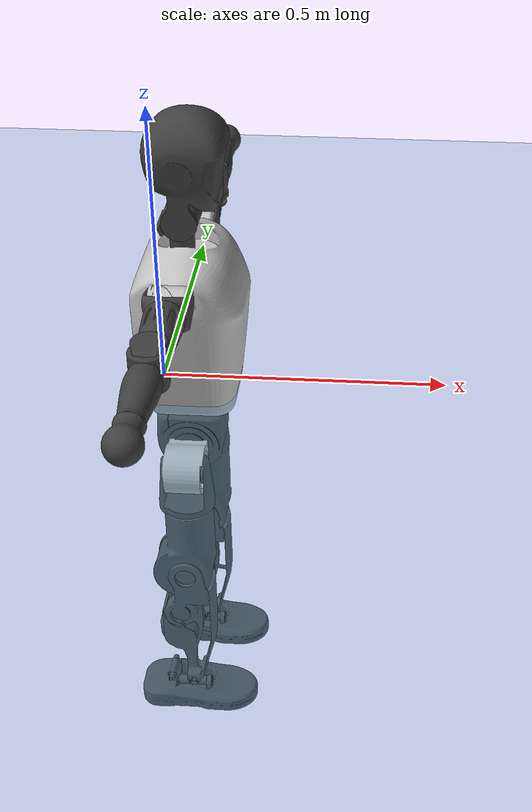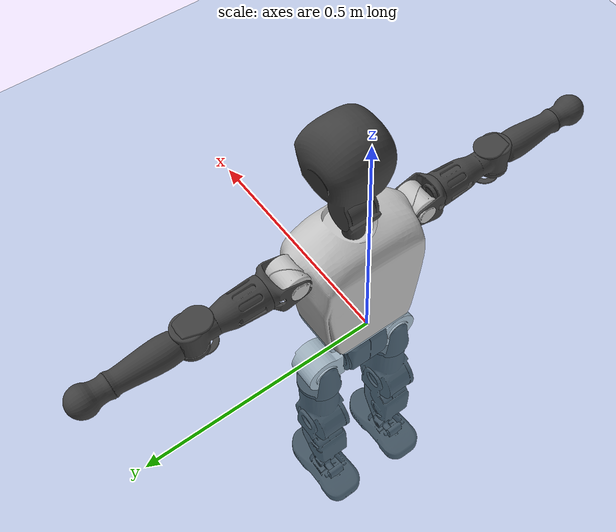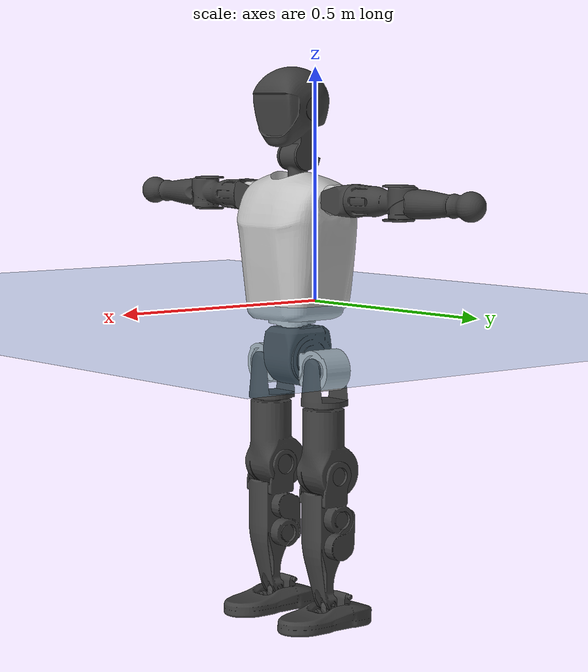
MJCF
<mujoco model="T1">
  <compiler angle="radian" assetdir="assets" balanceinertia="true" inertiafromgeom="false"/>

  <option timestep="0.005" density="1.2" viscosity="2e-05"/>

  <size nkey="1"/>

  <visual>
    <quality shadowsize="8192"/>
    <map shadowclip="0.5"/>
  </visual>

  <default>
    <default class="/">
      <joint armature="0.01" damping="0.01" frictionloss="0.1"/>
      <geom contype="0" conaffinity="0" group="1" solref="-1000 -80"/>
      <site size="0.01 0.005 0.005" group="5"/>
      <general forcelimited="true" biastype="affine" gainprm="25" biasprm="0 -25 -0.6"/>
      <default class="t1">
        <geom rgba="0.25 0.25 0.25 1"/>
        <default class="visual">
          <geom type="mesh" group="2"/>
        </default>
        <default class="collision">
          <geom group="3"/>
        </default>
        <default class="foot">
          <geom size="0.1115 0.05 0.015" type="box" condim="6" group="4" priority="1" solimp="0.015 1 0.015"/>
        </default>
        <default class="reward_collision_sphere">
          <geom group="5" rgba="1 0 0 1"/>
        </default>
      </default>
    </default>
  </default>

  <asset>
    <texture type="skybox" colorspace="auto" name="//unnamed_texture_0" builtin="gradient" rgb1="0.95 0.95 0.95" rgb2="0.95 0.95 0.95" width="100" height="600"/>
    <texture type="2d" colorspace="auto" name="texplane" builtin="checker" rgb1="0.345 0.575 0.748" rgb2="0.345 0.575 0.748" markrgb="1 1 1" width="512" height="512"/>
    <material name="MatPlane" class="/" texture="texplane" texuniform="true" texrepeat="2 2" specular="0.9"/>
    <mesh name="Trunk" class="/" file="Trunk.stl"/>
    <mesh name="H1" class="/" file="H1.stl"/>
    <mesh name="H2" class="/" file="H2.stl"/>
    <mesh name="AL1" class="/" file="AL1.stl"/>
    <mesh name="AL2" class="/" file="AL2.stl"/>
    <mesh name="AL3" class="/" file="AL3.stl"/>
    <mesh name="left_hand_link" class="/" file="left_hand_link.stl"/>
    <mesh name="AR1" class="/" file="AR1.stl"/>
    <mesh name="AR2" class="/" file="AR2.stl"/>
    <mesh name="AR3" class="/" file="AR3.stl"/>
    <mesh name="right_hand_link" class="/" file="right_hand_link.stl"/>
    <mesh name="Waist" class="/" file="Waist.stl"/>
    <mesh name="Hip_Pitch_Left" class="/" file="Hip_Pitch_Left.stl"/>
    <mesh name="Hip_Roll_Left" class="/" file="Hip_Roll_Left.stl"/>
    <mesh name="Hip_Yaw_Left" class="/" file="Hip_Yaw_Left.stl"/>
    <mesh name="Shank_Left" class="/" file="Shank_Left.stl"/>
    <mesh name="Ankle_Cross_Left" class="/" file="Ankle_Cross_Left.stl"/>
    <mesh name="left_foot_link" class="/" file="left_foot_link.stl"/>
    <mesh name="Hip_Pitch_Right" class="/" file="Hip_Pitch_Right.stl"/>
    <mesh name="Hip_Roll_Right" class="/" file="Hip_Roll_Right.stl"/>
    <mesh name="Hip_Yaw_Right" class="/" file="Hip_Yaw_Right.stl"/>
    <mesh name="Shank_Right" class="/" file="Shank_Right.stl"/>
    <mesh name="Ankle_Cross_Right" class="/" file="Ankle_Cross_Right.stl"/>
    <mesh name="right_foot_link" class="/" file="right_foot_link.stl"/>
  </asset>

  <worldbody>
    <geom name="floor" class="/" size="100 100 0.125" type="plane" group="0" material="MatPlane"/>
    <light name="toplight_shadow" class="/" pos="0 0 5" dir="0.0990148 0.0990148 -0.990148" type="directional" ambient="0.04 0.04 0.04" diffuse="0.55 0.55 0.55" specular="0.12 0.12 0.12"/>
    <light name="toplight_fill" class="/" pos="0 0 5" dir="0.0990148 0.0990148 -0.990148" type="directional" castshadow="false" ambient="0.04 0.04 0.04" diffuse="0.3 0.3 0.3" specular="0.08 0.08 0.08"/>
    <body name="trunk" childclass="t1" pos="0.0007684 -0.00149964 -0.00013121" quat="1 4.84865e-05 5.11392e-05 -4.11556e-06">
      <inertial pos="0.04161 0.00036649 0.107242" quat="0.999972 0.000571533 -0.00742167 0.000466358" mass="7.78617" diaginertia="0.0226261 0.0387869 0.0625639"/>
      <joint name="//unnamed_joint_0" type="free" armature="0" damping="0" frictionloss="0"/>
      <geom name="//unnamed_geom_1" class="visual" rgba="0.76 0.76 0.76 1" mesh="Trunk"/>
      <geom name="//unnamed_geom_2" class="collision" size="0.066343 0.0884573 0.132686" pos="0.0454994 0 0.123081" type="box"/>
      <geom name="//unnamed_geom_3" class="reward_collision_sphere" size="0.101726" pos="0.0454994 0 0.102568"/>
      <geom name="//unnamed_geom_4" class="reward_collision_sphere" size="0.0132686" pos="0.0454994 0.0739261 0"/>
      <geom name="//unnamed_geom_5" class="reward_collision_sphere" size="0.0132686" pos="0.0454994 -0.0739261 0"/>
      <geom name="//unnamed_geom_6" class="reward_collision_sphere" size="0.0132686" pos="0.0454994 0.0930599 0.184622"/>
      <geom name="//unnamed_geom_7" class="reward_collision_sphere" size="0.0132686" pos="0.0454994 -0.0930599 0.184622"/>
      <site name="imu" pos="-0.00230399 -0.010286 0.00203771" size="0.00884573"/>
      <camera name="track" pos="0 -1.73944 0" quat="0.707107 0.707107 0 0" mode="trackcom"/>
      <camera name="ego_camera" pos="0.0925155 0 0.430784" quat="-0.5 -0.5 0.5 0.5"/>
      <body name="H1" pos="0.0462273 -0.000150067 0.248803" quat="1 1.11462e-05 0.000151934 -1.25841e-05">
        <inertial pos="-0.00161412 -0.00118396 0.0591003" quat="0.763537 -0.0237529 0.00875204 0.645268" mass="0.302026" diaginertia="5.96854e-05 0.000111281 0.000168146"/>
        <joint name="AAHead_yaw" pos="0 0 0" axis="0.00609719 -0.00822312 0.999948" stiffness="0.00328326" range="-1.58129 1.56487" armature="0.00883938" damping="0.0104517" frictionloss="0.084352"/>
        <geom name="//unnamed_geom_8" class="visual" mesh="H1"/>
        <body name="H2" pos="0.00102942 0.000180466 0.0629712" quat="1 0.000135101 -5.58074e-05 0.000103849">
          <inertial pos="0.00558003 -0.00166253 0.101446" quat="0.988708 0.106096 -0.0714053 -0.0781167" mass="0.429109" diaginertia="0.000505252 0.000912048 0.00192892"/>
          <joint name="Head_pitch" pos="0 0 0" axis="-0.0066256 -0.999972 0.00359129" range="-1.2151 0.344814" armature="0.00859944" damping="0.00528467" frictionloss="0.0924573"/>
          <geom name="//unnamed_geom_9" class="visual" mesh="H2"/>
          <geom name="//unnamed_geom_10" class="collision" size="0.0707658" pos="0.00758323 0 0.112824"/>
          <geom name="//unnamed_geom_11" class="reward_collision_sphere" size="0.0796115" pos="0.0151665 0 0.102568"/>
        </body>
      </body>
      <body name="AL1" pos="0.0458897 0.0934754 0.224261" quat="1 0.000159554 0.00040454 -0.00044971">
        <inertial pos="-0.000602691 0.0379788 -0.00244247" quat="0.494685 0.499738 -0.505282 0.50024" mass="0.378338" diaginertia="0.000352784 0.000660178 0.000344433"/>
        <joint name="Left_Shoulder_Pitch" pos="0 0 0" axis="-0.00754181 0.999937 -0.00828743" range="-3.30689 1.2367" armature="0.00928259" damping="0.0089305" frictionloss="0.0884056"/>
        <geom name="//unnamed_geom_12" class="visual" rgba="0.76 0.76 0.76 1" mesh="AL1"/>
        <body name="AL2" pos="0.000932124 0.0406653 -0.00140701" quat="0.999999 0.0008081 -0.000735819 0.000381818">
          <inertial pos="0.0035856 0.0303707 -0.000208347" quat="0.487428 0.511723 -0.488389 0.511889" mass="0.109107" diaginertia="0.000101311 0.000171546 0.000197728"/>
          <joint name="Left_Shoulder_Roll" pos="0 0 0" axis="-0.999928 -0.0103297 0.00615795" range="-1.52895 1.75933" armature="0.00922755" damping="0" frictionloss="0.0977518"/>
          <geom name="//unnamed_geom_13" class="visual" mesh="AL2"/>
          <body name="AL3" pos="0.00186846 0.0555256 0.000616114" quat="1 0.000374525 0.00076725 -0.000516767">
            <inertial pos="-0.000468292 0.0724877 0.000737947" quat="0.706519 0.707694 6.36098e-05 -0.000178348" mass="0.730785" diaginertia="0.0032376 0.00653435 0.000685055"/>
            <joint name="Left_Elbow_Pitch" pos="0 0 0" axis="-0.00105518 -0.999975 -0.00699084" range="-2.22233 2.21968" armature="0.0098615" damping="0" frictionloss="0.0938554"/>
            <geom name="//unnamed_geom_14" class="visual" mesh="AL3"/>
            <geom name="//unnamed_geom_15" class="collision" size="0.0265372 0.066343" pos="0 0.0434859 0" quat="0.707105 0.707108 0 0" type="cylinder"/>
            <geom name="//unnamed_geom_16" class="reward_collision_sphere" size="0.0318446"/>
            <body name="left_hand_link" pos="0.000466085 0.128133 -0.00129492" quat="1 -0.000120147 -0.000275533 0.000134097">
              <inertial pos="-0.000165298 0.0951258 -0.0010468" quat="0.708165 0.706047 -0.000229153 -0.000314075" mass="0.226232" diaginertia="0.00203229 0.00405502 0.000241352"/>
              <joint name="Left_Elbow_Yaw" pos="0 0 0" axis="0.0061578 0.00126494 0.99998" range="-2.44704 0.00337474" armature="0.00936054" damping="0.0120177" frictionloss="0.0890465"/>
              <geom name="//unnamed_geom_17" class="visual" mesh="left_hand_link"/>
              <geom name="//unnamed_geom_18" class="collision" size="0.0265372 0.0774001" pos="0 0.113063 0" quat="0.707105 0.707108 0 0" type="cylinder"/>
              <geom name="//unnamed_geom_19" class="reward_collision_sphere" size="0.0442286"/>
              <geom name="//unnamed_geom_20" class="reward_collision_sphere" size="0.03096" pos="0 0.095669 0"/>
              <geom name="//unnamed_geom_21" class="reward_collision_sphere" size="0.03096" pos="0 0.186989 0"/>
            </body>
          </body>
        </body>
      </body>
      <body name="AR1" pos="0.0436895 -0.0928435 0.224143" quat="1 -1.7659e-06 0.00043807 -1.12476e-06">
        <inertial pos="-0.000387957 -0.0414322 0.00210582" quat="0.505683 0.495005 -0.503357 0.49587" mass="0.366371" diaginertia="0.000333767 0.000637276 0.000334139"/>
        <joint name="Right_Shoulder_Pitch" pos="0 0 0" axis="0.00194022 -0.999996 0.00211319" range="-1.20559 3.30867" armature="0.00873908" damping="0.00100982" frictionloss="0.0851403"/>
        <geom name="//unnamed_geom_22" class="visual" rgba="0.76 0.76 0.76 1" mesh="AR1"/>
        <body name="AR2" pos="-0.000100118 -0.038226 0.000347313" quat="1 0.000278434 -6.88326e-05 -1.28486e-05">
          <inertial pos="0.00313596 -0.0330754 -0.00199293" quat="0.51175 0.487994 -0.511704 0.487988" mass="0.109054" diaginertia="9.83135e-05 0.000164721 0.000193349"/>
          <joint name="Right_Shoulder_Roll" pos="0 0 0" axis="-0.999947 0.0102947 0.000951291" stiffness="0.00958224" range="-1.7191 1.61214" armature="0.00897515" damping="0" frictionloss="0.0894779"/>
          <geom name="//unnamed_geom_23" class="visual" mesh="AR2"/>
          <body name="AR3" pos="0.000581359 -0.0533315 -0.000327118" quat="1 -3.5093e-06 2.13447e-07 -6.12519e-06">
            <inertial pos="-0.00129775 -0.0742147 0.000187712" quat="0.708673 0.705537 0.000656053 0.000461839" mass="0.70199" diaginertia="0.0031957 0.00636534 0.000695843"/>
            <joint name="Right_Elbow_Pitch" pos="0 0 0" axis="-0.00492918 0.999987 -0.00131785" range="-2.27382 2.26192" armature="0.00983771" damping="0.010241" frictionloss="0.0788856"/>
            <geom name="//unnamed_geom_24" class="visual" mesh="AR3"/>
            <geom name="//unnamed_geom_25" class="collision" size="0.0265372 0.066343" pos="0 -0.0434859 0" quat="0.707105 0.707108 0 0" type="cylinder"/>
            <geom name="//unnamed_geom_26" class="reward_collision_sphere" size="0.0318446"/>
            <body name="right_hand_link" pos="-0.000602125 -0.127563 -0.000454528" quat="1 7.92233e-05 -0.000136034 0.000285672">
              <inertial pos="0.000402829 -0.0958308 -0.00166729" quat="0.709896 0.704216 0.0107009 -0.00358942" mass="0.234345" diaginertia="0.00199587 0.00404486 0.000245303"/>
              <joint name="Right_Elbow_Yaw" pos="0 0 0" axis="-0.000745105 -0.000843168 0.999999" range="-0.0447922 2.48712" armature="0.00895703" damping="0.0126861" frictionloss="0.0838942"/>
              <geom name="//unnamed_geom_27" class="visual" mesh="right_hand_link"/>
              <geom name="//unnamed_geom_28" class="collision" size="0.0265372 0.0774001" pos="0 -0.113063 0" quat="0.707105 0.707108 0 0" type="cylinder"/>
              <geom name="//unnamed_geom_29" class="reward_collision_sphere" size="0.0442286"/>
              <geom name="//unnamed_geom_30" class="reward_collision_sphere" size="0.03096" pos="0 -0.095669 0"/>
              <geom name="//unnamed_geom_31" class="reward_collision_sphere" size="0.03096" pos="0 -0.186989 0"/>
            </body>
          </body>
        </body>
      </body>
      <body name="Waist" pos="0.0469999 -0.00122972 -0.118502" quat="1 -0.000172834 -6.64384e-05 9.69295e-05">
        <inertial pos="0.000366134 -0.000562248 0.00745835" quat="0.983607 -5.99612e-05 -0.180314 0.00208743" mass="1.77933" diaginertia="0.00132204 0.00262577 0.0054047"/>
        <joint name="Waist" pos="0 0 0" axis="0.00236519 -0.0103959 0.999943" range="-1.57361 1.5598" armature="0.00842033" damping="0.0212235" frictionloss="0.0806648"/>
        <geom name="//unnamed_geom_32" class="visual" mesh="Waist"/>
        <body name="Hip_Pitch_Left" pos="0.00153587 0.093737 0.000673752" quat="1 3.00356e-05 -0.000315951 -5.9075e-05">
          <inertial pos="0.00310932 -0.00708576 -0.0208605" quat="0.97306 0.230331 0.00814588 0.00598823" mass="0.711535" diaginertia="0.000454547 0.000722192 0.00140354"/>
          <joint name="Left_Hip_Pitch" pos="0 0 0" axis="0.00209307 0.999998 -0.000688728" range="-1.79343 1.61436" armature="0.00863484" damping="0" frictionloss="0.0904626"/>
          <geom name="//unnamed_geom_33" class="visual" rgba="0.76 0.76 0.76 1" mesh="Hip_Pitch_Left"/>
          <body name="Hip_Roll_Left" pos="0.00187866 -0.00133725 -0.0188592" quat="1 1.08007e-05 -0.000129309 9.76711e-05">
            <inertial pos="0.00051811 0.00163802 -0.0551368" quat="0.704097 -0.00683274 -0.00394183 0.71006" mass="0.254555" diaginertia="0.000436026 0.000718131 0.000564975"/>
            <joint name="Left_Hip_Roll" pos="0 0 0" axis="-0.999983 0.00581015 0.00101975" range="-1.56796 0.189442" armature="0.0091156" damping="0.00747035" frictionloss="0.0842991"/>
            <geom name="//unnamed_geom_34" class="visual" mesh="Hip_Roll_Left"/>
            <geom name="//unnamed_geom_35" class="reward_collision_sphere" size="0.0486515"/>
            <body name="Hip_Yaw_Left" pos="0.00108229 0.000723002 -0.0834798" quat="1 -0.000158792 -0.000185647 -9.82198e-06">
              <inertial pos="-0.00503918 -0.000238514 -0.0916884" quat="0.701757 -0.0313617 -0.0221204 0.711382" mass="1.478" diaginertia="0.00646557 0.0125873 0.0029894"/>
              <joint name="Left_Hip_Yaw" pos="0 0 0" axis="0.00805509 0.00367179 -0.999961" range="-1.01527 0.979869" armature="0.00866943" damping="0.00340499" frictionloss="0.0883337"/>
              <geom name="//unnamed_geom_36" class="visual" mesh="Hip_Yaw_Left"/>
              <geom name="//unnamed_geom_37" class="collision" size="0.0442286 0.0707658" type="cylinder"/>
              <body name="Shank_Left" pos="-0.00878095 0.00179349 -0.14003" quat="1 1.35694e-05 3.30346e-05 3.10493e-05">
                <inertial pos="-0.00531997 -0.00205014 -0.127444" quat="0.997573 0.00143939 -0.0241062 0.0653018" mass="1.18896" diaginertia="0.00891198 0.0171843 0.0021603"/>
                <joint name="Left_Knee_Pitch" pos="0 0 0" axis="-0.00486657 0.999987 0.00116067" range="-0.00548263 2.34125" armature="0.00841885" damping="0.00933399" frictionloss="0.099897"/>
                <geom name="//unnamed_geom_38" class="visual" mesh="Shank_Left"/>
                <geom name="//unnamed_geom_39" class="collision" size="0.0442286 0.066343" pos="0 0 -0.123081" type="cylinder"/>
                <geom name="//unnamed_geom_40" class="reward_collision_sphere" size="0.0574972"/>
                <body name="Ankle_Cross_Left" pos="-0.00135529 -0.001388 -0.28834" quat="1 -4.13667e-05 6.18989e-05 -5.16568e-05">
                  <inertial pos="-0.00313006 -0.000328883 -0.00807081" quat="0.441718 0.550988 0.550685 0.445021" mass="0.0484149" diaginertia="7.16289e-06 1.19763e-05 1.24446e-05"/>
                  <joint name="Left_Ankle_Pitch" pos="0 0 0" axis="-0.0136047 0.999906 -0.00180094" range="-0.852089 0.36858" armature="0.00883323" damping="0.00863041" frictionloss="0.0903636"/>
                  <geom name="//unnamed_geom_41" class="visual" mesh="Ankle_Cross_Left"/>
                  <body name="left_foot_link" pos="-0.00068341 -7.05895e-05 -0.0125392" quat="0.999999 6.46671e-06 -0.000735767 0.00106708">
                    <inertial pos="0.00209002 0.00025249 -0.0084754" quat="-0.00715067 0.620528 -0.00335266 0.784145" mass="0.468545" diaginertia="0.000670289 0.00117855 0.00242717"/>
                    <joint name="Left_Ankle_Roll" pos="0 0 0" axis="-0.999993 -0.00250418 -0.00269134" stiffness="0.00177251" range="-0.433142 0.4417" armature="0.00882395" damping="0.00158263" frictionloss="0.0843622"/>
                    <geom name="//unnamed_geom_42" class="visual" mesh="left_foot_link"/>
                    <geom name="left_foot" class="foot" size="0.10527 0.0422679 0.0121736" pos="0.00758323 0 -0.0153851"/>
                    <geom name="//unnamed_geom_44" class="reward_collision_sphere" size="0.0459978" pos="0.00758323 0 -0.0153851"/>
                    <geom name="//unnamed_geom_45" class="reward_collision_sphere" size="0.0265372" pos="0.0720407 -0.0200035 -0.0153851"/>
                    <geom name="//unnamed_geom_46" class="reward_collision_sphere" size="0.0265372" pos="-0.0530826 -0.0200035 -0.0153851"/>
                    <site name="left_foot" class="foot" pos="0.00758323 0 -0.0153851" size="0.00884573"/>
                  </body>
                </body>
              </body>
            </body>
          </body>
        </body>
        <body name="Hip_Pitch_Right" pos="-0.00206094 -0.0921275 0.000852937" quat="1 -0.000654288 0.000262798 -0.00019035">
          <inertial pos="0.00030738 0.00768267 -0.0166803" quat="0.973416 -0.228402 0.0157583 -0.00674828" mass="0.721499" diaginertia="0.000457366 0.000735701 0.00143889"/>
          <joint name="Right_Hip_Pitch" pos="0 0 0" axis="0.00332688 -0.999989 -0.00319517" stiffness="0.00297216" range="-1.57127 1.78926" armature="0.00861724" damping="0.00121795" frictionloss="0.0930184"/>
          <geom name="//unnamed_geom_47" class="visual" rgba="0.76 0.76 0.76 1" mesh="Hip_Pitch_Right"/>
          <body name="Hip_Roll_Right" pos="0.00157645 0.000979219 -0.0199241" quat="1 -3.61717e-05 -2.99028e-05 7.30819e-05">
            <inertial pos="-0.000724731 -8.1002e-05 -0.0564412" quat="0.70777 -0.00607255 -0.00531094 0.706397" mass="0.271452" diaginertia="0.000436982 0.000752069 0.000587037"/>
            <joint name="Right_Hip_Roll" pos="0 0 0" axis="-0.999992 -0.00248348 -0.00311209" stiffness="0.00223718" range="-0.20796 1.58336" armature="0.00876199" damping="0.00596304" frictionloss="0.0892919"/>
            <geom name="//unnamed_geom_48" class="visual" mesh="Hip_Roll_Right"/>
            <geom name="//unnamed_geom_49" class="reward_collision_sphere" size="0.0486515"/>
            <body name="Hip_Yaw_Right" pos="0.00011728 -0.000362523 -0.0836878" quat="1 -6.02027e-05 5.45464e-05 0.000328051">
              <inertial pos="-0.00477315 -0.00237543 -0.0892566" quat="0.716042 -0.0331093 -0.0326892 0.696505" mass="1.54888" diaginertia="0.0064958 0.0131206 0.00294934"/>
              <joint name="Right_Hip_Yaw" pos="0 0 0" axis="-0.00188126 0.00176404 -0.999997" stiffness="0.0095156" range="-0.992822 1.00277" armature="0.00776321" damping="0.00325218" frictionloss="0.091071"/>
              <geom name="//unnamed_geom_50" class="visual" mesh="Hip_Yaw_Right"/>
              <geom name="//unnamed_geom_51" class="collision" size="0.0442286 0.0707658" type="cylinder"/>
              <body name="Shank_Right" pos="-0.00818206 -0.000966851 -0.136994" quat="1 8.82603e-05 5.64328e-05 6.13997e-05">
                <inertial pos="-0.00218173 0.00228878 -0.126823" quat="0.999459 -0.000238426 -0.0196651 -0.0263661" mass="1.2772" diaginertia="0.00938336 0.0181392 0.00229941"/>
                <joint name="Right_Knee_Pitch" pos="0 0 0" axis="0.00257566 -0.99999 0.00369847" range="-2.33981 -0.00373081" armature="0.00838968" damping="0.005941" frictionloss="0.0865988"/>
                <geom name="//unnamed_geom_52" class="visual" mesh="Shank_Right"/>
                <geom name="//unnamed_geom_53" class="collision" size="0.0442286 0.066343" pos="0 0 -0.123081" type="cylinder"/>
                <geom name="//unnamed_geom_54" class="reward_collision_sphere" size="0.0574972"/>
                <body name="Ankle_Cross_Right" pos="0.000694655 -0.00150528 -0.287318" quat="1 0.000286545 2.24385e-05 -0.000350535">
                  <inertial pos="-0.00381825 0.000420306 -0.00798595" quat="0.444013 0.550723 0.551238 0.442373" mass="0.0496701" diaginertia="7.36982e-06 1.27053e-05 1.28424e-05"/>
                  <joint name="Right_Ankle_Pitch" pos="0 0 0" axis="-0.0126241 -0.999901 -0.00618537" range="-0.330193 0.876928" armature="0.00858092" damping="0.00418191" frictionloss="0.0838398"/>
                  <geom name="//unnamed_geom_55" class="visual" mesh="Ankle_Cross_Right"/>
                  <body name="right_foot_link" pos="0.000244657 -0.00264117 -0.0109559" quat="1 2.67725e-05 0.00022716 0.000107439">
                    <inertial pos="0.00241284 0.000126904 -0.00876145" quat="-0.000426458 0.625693 -0.0010961 0.780068" mass="0.476094" diaginertia="0.000696889 0.00117654 0.0024884"/>
                    <joint name="Right_Ankle_Roll" pos="0 0 0" axis="-0.999948 -0.00945683 -0.00387298" range="-0.442655 0.45727" armature="0.00846028" damping="0.00374372" frictionloss="0.0783762"/>
                    <geom name="//unnamed_geom_56" class="visual" mesh="right_foot_link"/>
                    <geom name="right_foot" class="foot" size="0.0998351 0.0421715 0.0130739" pos="0.00758323 0 -0.0153851"/>
                    <geom name="//unnamed_geom_58" class="reward_collision_sphere" size="0.0353829"/>
                    <geom name="//unnamed_geom_59" class="reward_collision_sphere" size="0.0265372" pos="0.00758323 0 -0.0153851"/>
                    <geom name="//unnamed_geom_60" class="reward_collision_sphere" size="0.0265372" pos="0.0720407 0.0200035 -0.0153851"/>
                    <geom name="//unnamed_geom_61" class="reward_collision_sphere" size="0.0265372" pos="-0.0530826 0.0200035 -0.0153851"/>
                    <site name="right_foot" class="foot" pos="0.00758323 0 -0.0153851" size="0.00884573"/>
                  </body>
                </body>
              </body>
            </body>
          </body>
        </body>
      </body>
    </body>
  </worldbody>

  <contact>
    <pair class="/" geom1="floor" geom2="left_foot" name="//unnamed_contact_0"/>
    <pair class="/" geom1="floor" geom2="right_foot" name="//unnamed_contact_1"/>
  </contact>

  <actuator>
    <general name="AAHead_yaw" class="/" joint="AAHead_yaw" forcerange="-5.73391 5.73391" gainprm="22.6414" biasprm="0 -22.6414 -0.508033"/>
    <general name="Head_pitch" class="/" joint="Head_pitch" forcerange="-5.97814 5.97814" gainprm="22.6414" biasprm="0 -22.6414 -0.508033"/>
    <general name="Left_Shoulder_Pitch" class="/" joint="Left_Shoulder_Pitch" forcerange="-15.837 15.837" gainprm="22.6414" biasprm="0 -22.6414 -0.508033"/>
    <general name="Left_Shoulder_Roll" class="/" joint="Left_Shoulder_Roll" forcerange="-15.2871 15.2871" gainprm="22.6414" biasprm="0 -22.6414 -0.508033"/>
    <general name="Left_Elbow_Pitch" class="/" joint="Left_Elbow_Pitch" forcerange="-16.8156 16.8156" gainprm="22.6414" biasprm="0 -22.6414 -0.508033"/>
    <general name="Left_Elbow_Yaw" class="/" joint="Left_Elbow_Yaw" forcerange="-17.5248 17.5248" gainprm="22.6414" biasprm="0 -22.6414 -0.508033"/>
    <general name="Right_Shoulder_Pitch" class="/" joint="Right_Shoulder_Pitch" forcerange="-16.0735 16.0735" gainprm="22.6414" biasprm="0 -22.6414 -0.508033"/>
    <general name="Right_Shoulder_Roll" class="/" joint="Right_Shoulder_Roll" forcerange="-16.758 16.758" gainprm="22.6414" biasprm="0 -22.6414 -0.508033"/>
    <general name="Right_Elbow_Pitch" class="/" joint="Right_Elbow_Pitch" forcerange="-16.2044 16.2044" gainprm="22.6414" biasprm="0 -22.6414 -0.508033"/>
    <general name="Right_Elbow_Yaw" class="/" joint="Right_Elbow_Yaw" forcerange="-15.0729 15.0729" gainprm="22.6414" biasprm="0 -22.6414 -0.508033"/>
    <general name="Waist" class="/" joint="Waist" forcerange="-26.6117 26.6117" gainprm="22.6414" biasprm="0 -22.6414 -0.508033"/>
    <general name="Left_Hip_Pitch" class="/" joint="Left_Hip_Pitch" forcerange="-40.1131 40.1131" gainprm="22.6414" biasprm="0 -22.6414 -0.508033"/>
    <general name="Left_Hip_Roll" class="/" joint="Left_Hip_Roll" forcerange="-26.5709 26.5709" gainprm="22.6414" biasprm="0 -22.6414 -0.508033"/>
    <general name="Left_Hip_Yaw" class="/" joint="Left_Hip_Yaw" forcerange="-25.531 25.531" gainprm="22.6414" biasprm="0 -22.6414 -0.508033"/>
    <general name="Left_Knee_Pitch" class="/" joint="Left_Knee_Pitch" forcerange="-52.7238 52.7238" gainprm="22.6414" biasprm="0 -22.6414 -0.508033"/>
    <general name="Left_Ankle_Pitch" class="/" joint="Left_Ankle_Pitch" forcerange="-17.0135 17.0135" gainprm="22.6414" biasprm="0 -22.6414 -0.508033"/>
    <general name="Left_Ankle_Roll" class="/" joint="Left_Ankle_Roll" forcerange="-13.2851 13.2851" gainprm="22.6414" biasprm="0 -22.6414 -0.508033"/>
    <general name="Right_Hip_Pitch" class="/" joint="Right_Hip_Pitch" forcerange="-38.9588 38.9588" gainprm="22.6414" biasprm="0 -22.6414 -0.508033"/>
    <general name="Right_Hip_Roll" class="/" joint="Right_Hip_Roll" forcerange="-26.6217 26.6217" gainprm="22.6414" biasprm="0 -22.6414 -0.508033"/>
    <general name="Right_Hip_Yaw" class="/" joint="Right_Hip_Yaw" forcerange="-27.0924 27.0924" gainprm="22.6414" biasprm="0 -22.6414 -0.508033"/>
    <general name="Right_Knee_Pitch" class="/" joint="Right_Knee_Pitch" forcerange="-53.5032 53.5032" gainprm="22.6414" biasprm="0 -22.6414 -0.508033"/>
    <general name="Right_Ankle_Pitch" class="/" joint="Right_Ankle_Pitch" forcerange="-16.8423 16.8423" gainprm="22.6414" biasprm="0 -22.6414 -0.508033"/>
    <general name="Right_Ankle_Roll" class="/" joint="Right_Ankle_Roll" forcerange="-13.4006 13.4006" gainprm="22.6414" biasprm="0 -22.6414 -0.508033"/>
  </actuator>

  <sensor>
    <gyro site="imu" name="imu_angular_velocity"/>
    <velocimeter site="imu" name="imu_linear_velocity"/>
    <framelinvel objtype="site" objname="left_foot" name="left_foot_global_linear_velocity"/>
    <framelinvel objtype="site" objname="right_foot" name="right_foot_global_linear_velocity"/>
  </sensor>

  <keyframe>
    <key name="home" qpos="0 0 0.6385 1 0 0 0 0 0 0 1.4 0 -0.4 0 -1.4 0 0.4 0 -0.4 0 0 0.8 -0.4 0 0.4 0 0 -0.8 0.4 0"/>
  </keyframe>
</mujoco>
